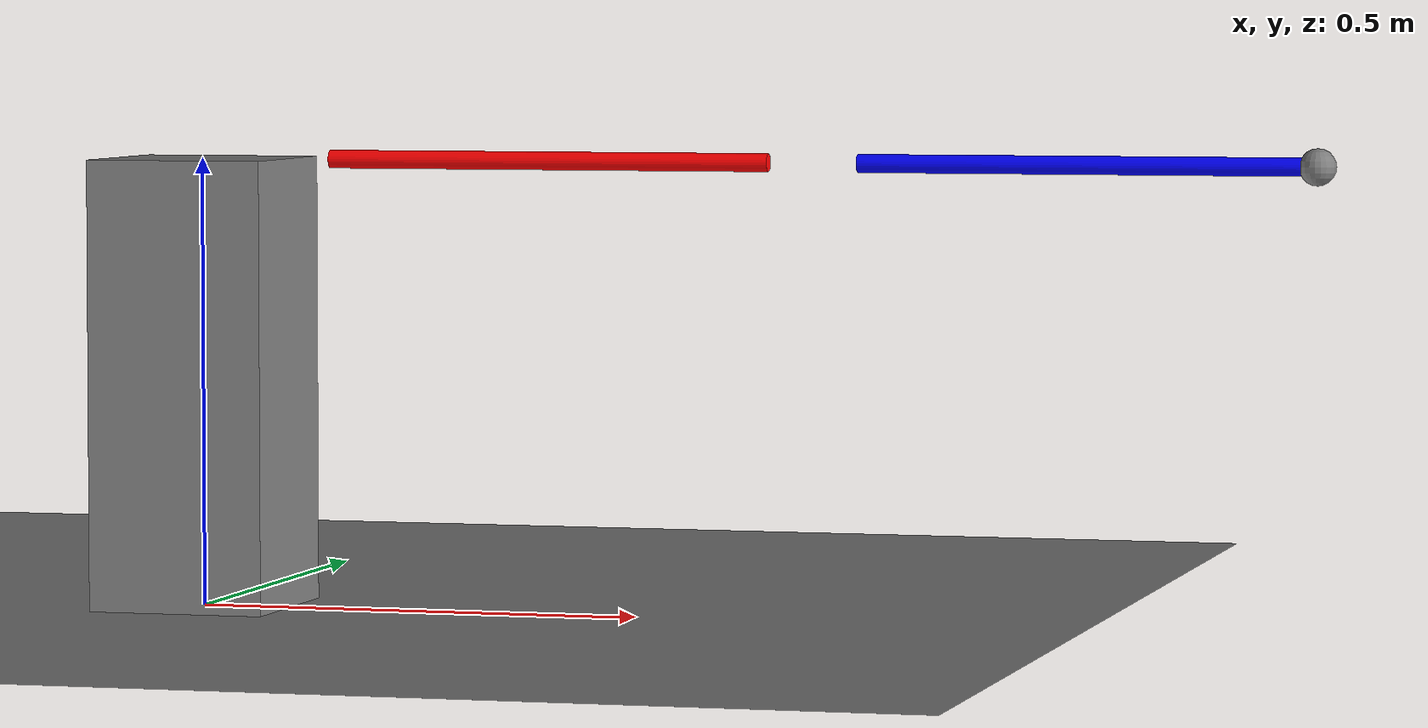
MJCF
<mujoco model="twoDOFleg">
  <!-- defining some defaults for readability -->
  <default>
    <default class="joint">
      <geom type="cylinder" size=".006" fromto="0 0 0 0 0 .05" rgba=".9 .6 1 1"/>
    </default>
  </default>

  <worldbody>
    <light pos="-0.5 -1 1.5"/>
    <light pos="0.5 -1 1.5"/>
    <geom type="plane" size="1 1 .01" pos="0 0 0"/>
    <camera name="for_video" pos="0.1 -1.4 0.02" xyaxes="1 0 0 0 1 3"/>
    <camera name="overhead" pos="0 0 3" xyaxes="1 0 0 0 1 0"/>
    <body name="torso" pos="0 0 0">
      <geom name="torso_shape" type="box" size="0.1 0.1 0.25" fromto="0 0 0 0 0 0.5"/>
      <body name="femur" pos="0 0 0.5">
        <geom name="femur_shape" type="cylinder" rgba="1 0 0 1" size=".01" fromto="0.15 0 0 0.65 0 0"/>
        <joint name="hip" type="hinge" class="joint" pos="0 0 0" axis="0 1 0" damping="5"/>
        <body name="tibia" pos="0.65 0 0">
          <geom name="tibia_shape" type="cylinder" rgba="0 0 1 1" size=".01" fromto="0.1 0 0 0.6 0 0"/>
          <joint name="knee" type="hinge" class="joint" pos="0 0 0" axis="0 1 0" damping="2"/>
          <site name="end_eff" pos="0.6 0 0" size="0.02"/>
        </body>
      </body>
    </body>
  </worldbody>

  <actuator>
    <position name="servo 1" joint="hip" kp="100"/>
    <position name="servo 2" joint="knee" kp="100"/>
  </actuator>

  <sensor>
    <framepos objtype="site" objname="end_eff"/>
    <framelinvel objtype="site" objname="end_eff"/>
    <touch site="end_eff"/>
  </sensor>
</mujoco>
